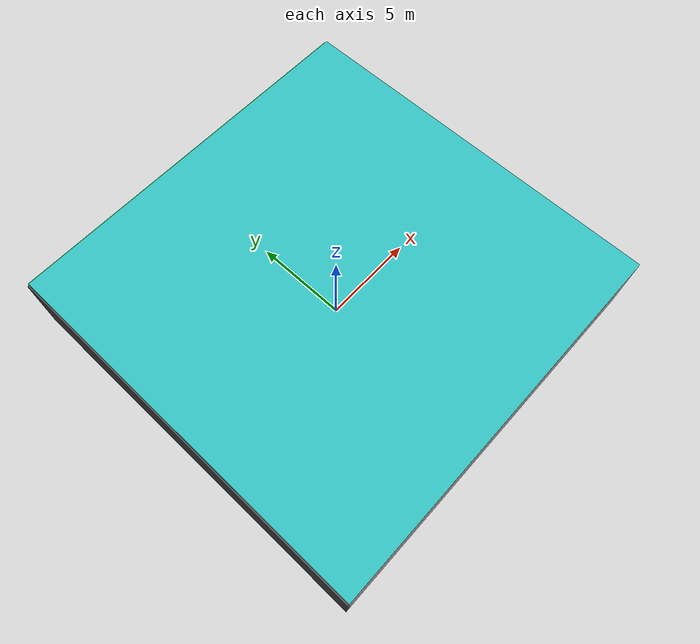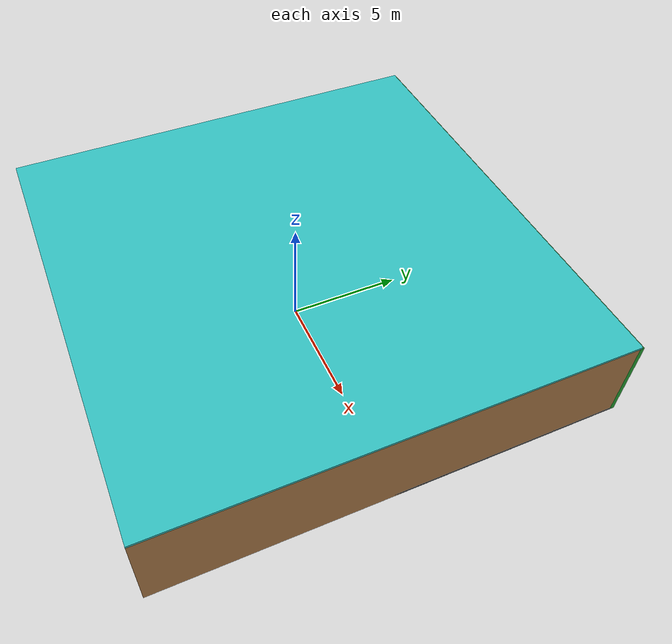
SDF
<sdf version="1.4">
 <world name="default">
  <physics type="ode">
   <max_step_size>0.001</max_step_size>
   <real_time_factor>1</real_time_factor>
   <real_time_update_rate>1000</real_time_update_rate>
   <gravity>0 0 -9.8</gravity>
  </physics>
  <scene><ambient>0.4 0.4 0.4 1</ambient><background>0.7 0.7 0.7 1</background><shadows>1</shadows></scene>
  <model name="Surrounding">
   <static>1</static>
   <link name="Ceiling">
    <collision name="Ceiling_Collision"><geometry><box><size>20 20 0.1</size></box></geometry></collision>
    <visual name="Ceiling_Visual">
     <geometry><box><size>20 20 0.1</size></box></geometry>
     <material>
      <script><uri>file://media/materials/scripts/gazebo.material</uri><name>Gazebo/TurquoiseGlow</name></script>
     </material>
    </visual>
    <pose>0 0 4.05 0 0 0</pose>
   </link>
   <link name="Wall_South">
    <collision name="Wall_South_Collision">
     <geometry><box><size>20 0 4</size></box></geometry>
     <pose>0 0 2 0 -0 0</pose>
    </collision>
    <visual name="Wall_South_Visual">
     <pose>0 0 2 0 -0 0</pose>
     <geometry><box><size>20 0 4</size></box></geometry>
     <material>
      <script><uri>file://media/materials/scripts/gazebo.material</uri><name>Gazebo/Grey</name></script>
     </material>
    </visual>
    <velocity_decay><linear>0</linear><angular>0</angular></velocity_decay>
    <pose>0 -10 0 0 -0 0</pose>
   </link>
   <link name="Wall_East">
    <collision name="Wall_21_Collision">
     <geometry><box><size>20 0 4</size></box></geometry>
     <pose>0 0 2 0 -0 0</pose>
    </collision>
    <visual name="Wall_21_Visual">
     <pose>0 0 2 0 -0 0</pose>
     <geometry><box><size>20 0 4</size></box></geometry>
     <material>
      <script><uri>file://media/materials/scripts/gazebo.material</uri><name>Gazebo/WoodFloor</name></script>
     </material>
    </visual>
    <velocity_decay><linear>0</linear><angular>0</angular></velocity_decay>
    <pose>10 0 0 0 -0 1.5708</pose>
   </link>
   <link name="Wall_North">
    <collision name="Wall_22_Collision">
     <geometry><box><size>20 0.2 4</size></box></geometry>
     <pose>0 0 2 0 -0 0</pose>
    </collision>
    <visual name="Wall_22_Visual">
     <pose>0 0 2 0 -0 0</pose>
     <geometry><box><size>20 0.2 4</size></box></geometry>
     <material>
      <script><uri>file://media/materials/scripts/gazebo.material</uri><name>Gazebo/GreenGlow</name></script>
     </material>
    </visual>
    <velocity_decay><linear>0</linear><angular>0</angular></velocity_decay>
    <pose>0 10 0 0 -0 0</pose>
   </link>
   <link name="Wall_West">
    <collision name="Wall_23_Collision">
     <geometry><box><size>20 0.2 4</size></box></geometry>
     <pose>0 0 2 0 -0 0</pose>
    </collision>
    <visual name="Wall_23_Visual">
     <pose>0 0 2 0 -0 0</pose>
     <geometry><box><size>20 0.2 4</size></box></geometry>
     <material>
      <script><uri>file://media/materials/scripts/gazebo.material</uri><name>Gazebo/DarkGrey</name></script>
     </material>
    </visual>
    <velocity_decay><linear>0</linear><angular>0</angular></velocity_decay>
    <pose>-10 0 0 0 0 -1.5708</pose>
   </link>
   <link name="Ground_link">
    <collision name="collision">
     <pose>0 0 .05 0 -0 0</pose>
     <geometry><box><size>20 20 0.1</size></box></geometry>
    </collision>
    <visual name="visual">
     <pose>0 0 .05 0 -0 0</pose>
     <geometry><box><size>20 20 0.1</size></box></geometry>
     <material>
      <script><uri>file://media/materials/scripts/gazebo.material</uri><name>Gazebo/FlatBlack</name></script>
     </material>
    </visual>
   </link>
   <static>1</static>
  </model>
  <spherical_coordinates>
   <surface_model>EARTH_WGS84</surface_model>
   <latitude_deg>0</latitude_deg>
   <longitude_deg>0</longitude_deg>
   <elevation>0</elevation>
   <heading_deg>0</heading_deg>
  </spherical_coordinates>
  <light name="lightball_0" type="diffuse">
   <diffuse>0.8 0.8 0.8 1</diffuse>
   <specular>0.2 0.2 0.2 1</specular>
   <attenuation>
    <range>100</range>
    <constant>0.7</constant>
    <linear>0.01</linear>
    <quadratic>0.001</quadratic>
   </attenuation>
   <direction>-0.5 0.1 -0.9</direction>
   <pose>8.39564000576 9.30975251363 3.82483983918 0 0 0</pose>
  </light>
  <light name="lightball_1" type="diffuse">
   <diffuse>0.8 0.8 0.8 1</diffuse>
   <specular>0.2 0.2 0.2 1</specular>
   <attenuation>
    <range>100</range>
    <constant>0.7</constant>
    <linear>0.01</linear>
    <quadratic>0.001</quadratic>
   </attenuation>
   <direction>-0.5 0.1 -0.9</direction>
   <pose>2.13493207704 4.58128157928 2.23155636588 0 0 0</pose>
  </light>
  <light name="lightball_2" type="diffuse">
   <diffuse>0.8 0.8 0.8 1</diffuse>
   <specular>0.2 0.2 0.2 1</specular>
   <attenuation>
    <range>100</range>
    <constant>0.7</constant>
    <linear>0.01</linear>
    <quadratic>0.001</quadratic>
   </attenuation>
   <direction>-0.5 0.1 -0.9</direction>
   <pose>-0.585938736691 6.30191092669 1.98752907049 0 0 0</pose>
  </light>
  <light name="lightball_3" type="diffuse">
   <diffuse>0.8 0.8 0.8 1</diffuse>
   <specular>0.2 0.2 0.2 1</specular>
   <attenuation>
    <range>100</range>
    <constant>0.7</constant>
    <linear>0.01</linear>
    <quadratic>0.001</quadratic>
   </attenuation>
   <direction>-0.5 0.1 -0.9</direction>
   <pose>-2.53597144283 -0.554026327508 2.37398274137 0 0 0</pose>
  </light>
  <light name="lightball_4" type="diffuse">
   <diffuse>0.8 0.8 0.8 1</diffuse>
   <specular>0.2 0.2 0.2 1</specular>
   <attenuation>
    <range>100</range>
    <constant>0.7</constant>
    <linear>0.01</linear>
    <quadratic>0.001</quadratic>
   </attenuation>
   <direction>-0.5 0.1 -0.9</direction>
   <pose>2.34557852316 4.21756628139 2.65505971284 0 0 0</pose>
  </light>
  <light name="lightball_5" type="diffuse">
   <diffuse>0.8 0.8 0.8 1</diffuse>
   <specular>0.2 0.2 0.2 1</specular>
   <attenuation>
    <range>100</range>
    <constant>0.7</constant>
    <linear>0.01</linear>
    <quadratic>0.001</quadratic>
   </attenuation>
   <direction>-0.5 0.1 -0.9</direction>
   <pose>-1.73898973151 7.19155743247 1.57331483149 0 0 0</pose>
  </light>
  <light name="lightball_6" type="diffuse">
   <diffuse>0.8 0.8 0.8 1</diffuse>
   <specular>0.2 0.2 0.2 1</specular>
   <attenuation>
    <range>100</range>
    <constant>0.7</constant>
    <linear>0.01</linear>
    <quadratic>0.001</quadratic>
   </attenuation>
   <direction>-0.5 0.1 -0.9</direction>
   <pose>8.4058013291 -8.82444841538 2.69207679013 0 0 0</pose>
  </light>
  <light name="lightball_7" type="diffuse">
   <diffuse>0.8 0.8 0.8 1</diffuse>
   <specular>0.2 0.2 0.2 1</specular>
   <attenuation>
    <range>100</range>
    <constant>0.7</constant>
    <linear>0.01</linear>
    <quadratic>0.001</quadratic>
   </attenuation>
   <direction>-0.5 0.1 -0.9</direction>
   <pose>-1.93046322873 2.79183015676 3.7577664763 0 0 0</pose>
  </light>
  <light name="lightball_8" type="diffuse">
   <diffuse>0.8 0.8 0.8 1</diffuse>
   <specular>0.2 0.2 0.2 1</specular>
   <attenuation>
    <range>100</range>
    <constant>0.7</constant>
    <linear>0.01</linear>
    <quadratic>0.001</quadratic>
   </attenuation>
   <direction>-0.5 0.1 -0.9</direction>
   <pose>-9.22818476356 -1.91959774137 1.92718654563 0 0 0</pose>
  </light>
  <light name="lightball_9" type="diffuse">
   <diffuse>0.8 0.8 0.8 1</diffuse>
   <specular>0.2 0.2 0.2 1</specular>
   <attenuation>
    <range>100</range>
    <constant>0.7</constant>
    <linear>0.01</linear>
    <quadratic>0.001</quadratic>
   </attenuation>
   <direction>-0.5 0.1 -0.9</direction>
   <pose>4.01719478749 4.95000393328 2.79129322856 0 0 0</pose>
  </light>
  <light name="lightball_10" type="diffuse">
   <diffuse>0.8 0.8 0.8 1</diffuse>
   <specular>0.2 0.2 0.2 1</specular>
   <attenuation>
    <range>100</range>
    <constant>0.7</constant>
    <linear>0.01</linear>
    <quadratic>0.001</quadratic>
   </attenuation>
   <direction>-0.5 0.1 -0.9</direction>
   <pose>-5.05504973219 -2.17945814547 0.831530198334 0 0 0</pose>
  </light>
  <include>
   <uri>model://robocup_3Dsim_goal</uri>
   <pose>-8.28355084948 -4.16481767962 0 0 0 0.839781418599</pose>
  </include>
  <include><uri>model://cabinet</uri><pose>-4.15815928187 -7.71616107445 0 0 0 2.997239986</pose></include>
  <include>
   <uri>model://robocup_3Dsim_goal</uri>
   <pose>-4.10411441979 2.27219421113 0 0 0 1.36510568998</pose>
  </include>
  <include><uri>model://cabinet</uri><pose>7.72951082631 1.89156778753 0 0 0 2.70731916808</pose></include>
 </world>
</sdf>

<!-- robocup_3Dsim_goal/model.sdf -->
<sdf version="1.5">
  <model name="robocup_3d_goal">
    <static>true</static>
    <link name="left_post">
      <pose>0 1.05 0.45 0 0 0</pose>
      <collision name="collision">
        <geometry>
          <cylinder>
            <radius>0.05</radius>
            <length>0.9</length>
          </cylinder>
        </geometry>
      </collision>
      <visual name="visual">
        <geometry>
          <cylinder>
            <radius>0.05</radius>
            <length>0.9</length>
          </cylinder>
        </geometry>
        <material>
          <script>
            <uri>file://media/materials/scripts/gazebo.material</uri>
            <name>Gazebo/ZincYellow</name>
          </script>
        </material>
      </visual>
    </link>
    <link name="left_support_horiz_lower">
      <pose>0.30 1.05 0.01 0 0 0</pose>
      <collision name="collision">
        <geometry>
          <box>
            <size>0.50 0.02 0.02</size>
          </box>
        </geometry>
      </collision>
      <visual name="visual">
        <geometry>
          <box>
            <size>0.50 0.02 0.02</size>
          </box>
        </geometry>
        <material>
          <script>
            <uri>file://media/materials/scripts/gazebo.material</uri>
            <name>Gazebo/White</name>
          </script>
        </material>
      </visual>
    </link>
    <link name="left_support_horiz_upper">
      <pose>0.30 1.05 0.79 0 0 0</pose>
      <collision name="collision">
        <geometry>
          <box>
            <size>0.50 0.02 0.02</size>
          </box>
        </geometry>
      </collision>
      <visual name="visual">
        <geometry>
          <box>
            <size>0.50 0.02 0.02</size>
          </box>
        </geometry>
        <material>
          <script>
            <uri>file://media/materials/scripts/gazebo.material</uri>
            <name>Gazebo/White</name>
          </script>
        </material>
      </visual>
    </link>
    <link name="left_support_vertical">
      <pose>0.56 1.05 0.4 0 1.5708 0</pose>
      <collision name="collision">
        <geometry>
          <box>
            <size>0.80 0.02 0.02</size>
          </box>
        </geometry>
      </collision>
      <visual name="visual">
        <geometry>
          <box>
            <size>0.80 0.02 0.02</size>
          </box>
        </geometry>
        <material>
          <script>
            <uri>file://media/materials/scripts/gazebo.material</uri>
            <name>Gazebo/White</name>
          </script>
        </material>
      </visual>
    </link>
    <link name="right_support_horiz_lower">
      <pose>0.30 -1.05 0.01 0 0 0</pose>
      <collision name="collision">
        <geometry>
          <box>
            <size>0.50 0.02 0.02</size>
          </box>
        </geometry>
      </collision>
      <visual name="visual">
        <geometry>
          <box>
            <size>0.50 0.02 0.02</size>
          </box>
        </geometry>
        <material>
          <script>
            <uri>file://media/materials/scripts/gazebo.material</uri>
            <name>Gazebo/White</name>
          </script>
        </material>
      </visual>
    </link>
    <link name="right_support_horiz_upper">
      <pose>0.30 -1.05 0.79 0 0 0</pose>
      <collision name="collision">
        <geometry>
          <box>
            <size>0.50 0.02 0.02</size>
          </box>
        </geometry>
      </collision>
      <visual name="visual">
        <geometry>
          <box>
            <size>0.50 0.02 0.02</size>
          </box>
        </geometry>
        <material>
          <script>
            <uri>file://media/materials/scripts/gazebo.material</uri>
            <name>Gazebo/White</name>
          </script>
        </material>
      </visual>
    </link>
    <link name="right_support_vertical">
      <pose>0.56 -1.05 0.4 0 1.5708 0</pose>
      <collision name="collision">
        <geometry>
          <box>
            <size>0.80 0.02 0.02</size>
          </box>
        </geometry>
      </collision>
      <visual name="visual">
        <geometry>
          <box>
            <size>0.80 0.02 0.02</size>
          </box>
        </geometry>
        <material>
          <script>
            <uri>file://media/materials/scripts/gazebo.material</uri>
            <name>Gazebo/White</name>
          </script>
        </material>
      </visual>
    </link>
    <link name="center_support_horiz_lower">
      <pose>0.56 0 0.01 0 1.5708 0</pose>
      <collision name="collision">
        <geometry>
          <box>
            <size>0.02 2.08 0.02</size>
          </box>
        </geometry>
      </collision>
      <visual name="visual">
        <geometry>
          <box>
            <size>0.02 2.08 0.02</size>
          </box>
        </geometry>
        <material>
          <script>
            <uri>file://media/materials/scripts/gazebo.material</uri>
            <name>Gazebo/White</name>
          </script>
        </material>
      </visual>
    </link>
    <link name="center_support_horiz_upper">
      <pose>0.56 0 0.79 0 1.5708 0</pose>
      <collision name="collision">
        <geometry>
          <box>
            <size>0.02 2.08 0.02</size>
          </box>
        </geometry>
      </collision>
      <visual name="visual">
        <geometry>
          <box>
            <size>0.02 2.08 0.02</size>
          </box>
        </geometry>
        <material>
          <script>
            <uri>file://media/materials/scripts/gazebo.material</uri>
            <name>Gazebo/White</name>
          </script>
        </material>
      </visual>
    </link>
    <link name="right_post">
      <pose>0 -1.05 0.45 0 0 0</pose>
      <collision name="collision">
        <geometry>
          <cylinder>
            <radius>0.05</radius>
            <length>0.9</length>
          </cylinder>
        </geometry>
      </collision>
      <visual name="visual">
        <geometry>
          <cylinder>
            <radius>0.05</radius>
            <length>0.9</length>
          </cylinder>
        </geometry>
        <material>
          <script>
            <uri>file://media/materials/scripts/gazebo.material</uri>
            <name>Gazebo/ZincYellow</name>
          </script>
        </material>
      </visual>
    </link>
    <link name="crossbar">
      <pose>0 0 0.85 1.57 1.57 0</pose>
      <collision name="collision">
        <geometry>
          <cylinder>
            <radius>0.05</radius>
            <length>2.0</length>
          </cylinder>
        </geometry>
      </collision>
      <visual name="visual">
        <geometry>
          <cylinder>
            <radius>0.05</radius>
            <length>2.0</length>
          </cylinder>
        </geometry>
        <material>
          <script>
            <uri>file://media/materials/scripts/gazebo.material</uri>
            <name>Gazebo/ZincYellow</name>
          </script>
        </material>
      </visual>
    </link>
    <link name="center_net">
      <pose>0.56 0 0.40 0 0 0</pose>
      <collision name="collision">
        <geometry>
          <box>
            <size>0.01 2.1 0.80</size>
          </box>
        </geometry>
      </collision>
      <visual name="visual">
        <geometry>
          <box>
            <size>0.01 2.1 0.80</size>
          </box>
        </geometry>
        <material>
          <script>
            <uri>model://../model_source/models/robocup09_spl_field/materials/scripts/</uri>
            <uri>model://../model_source/models/robocup09_spl_field/materials/textures/</uri>
            <name>RoboCup/Net</name>
          </script>
        </material>
      </visual>
    </link>
    <link name="left_net">
      <pose>0.30 1.05 0.40 0 0 0</pose>
      <collision name="collision">
        <geometry>
          <box>
            <size>0.50 0.01 0.76</size>
          </box>
        </geometry>
      </collision>
      <visual name="visual">
        <geometry>
          <box>
            <size>0.50 0.01 0.76</size>
          </box>
        </geometry>
        <material>
          <script>
            <uri>model://../model_source/models/robocup09_spl_field/materials/scripts/</uri>
            <uri>model://../model_source/models/robocup09_spl_field/materials/textures/</uri>
            <name>RoboCup/Net</name>
          </script>
        </material>
      </visual>
    </link>
    <link name="right_net">
      <pose>0.30 -1.05 0.40 0 0 0</pose>
      <collision name="collision">
        <geometry>
          <box>
            <size>0.50 0.01 0.76</size>
          </box>
        </geometry>
      </collision>
      <visual name="visual">
        <geometry>
          <box>
            <size>0.50 0.01 0.76</size>
          </box>
        </geometry>
        <material>
          <script>
            <uri>model://../model_source/models/robocup09_spl_field/materials/scripts/</uri>
            <uri>model://../model_source/models/robocup09_spl_field/materials/textures/</uri>
            <name>RoboCup/Net</name>
          </script>
        </material>
      </visual>
    </link>
  </model>
</sdf>

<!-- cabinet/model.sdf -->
<sdf version="1.5">
  <model name="cabinet">
    <static>true</static>
    <link name="cabinet_bottom_plate">
      <inertial>
        <pose>0 0 -1 0 0 0</pose>
        <inertia>
          <ixx>2.050000</ixx>
          <ixy>0</ixy>
          <ixz>0</ixz>
          <iyy>2.050000</iyy>
          <iyz>0</iyz>
          <izz>2.050000</izz>
        </inertia>
        <mass>25.000000</mass>
      </inertial>
      <collision name="cabinet_bottom_plate_geom">
        <pose>0 0 0.010000 0 0 0</pose>
        <geometry>
          <box>
            <size>0.450000 0.450000 0.020000</size>
          </box>
        </geometry>
      </collision>
      <visual name="cabinet_bottom_plate_geom_visual">
        <pose>0 0 0.010000 0 0 0</pose>
        <geometry>
          <box>
            <size>0.450000 0.450000 0.020000</size>
          </box>
        </geometry>
        <material>
          <script>
            <uri>model://media/materials/scripts/gazebo.material</uri>
            <name>Gazebo/Wood</name>
          </script>
        </material>
      </visual>
      <collision name="cabinet_bottom_plate_geom_cabinet_back_plate">
        <pose>0.235000 0 0.510000 0 0 0</pose>
        <geometry>
          <box>
            <size>0.020000 0.450000 1.020000</size>
          </box>
        </geometry>
      </collision>
      <visual name="cabinet_bottom_plate_geom_cabinet_back_plate_visual">
        <pose>0.235000 0 0.510000 0 0 0</pose>
        <geometry>
          <box>
            <size>0.020000 0.450000 1.020000</size>
          </box>
        </geometry>
        <material>
          <script>
            <uri>model://media/materials/scripts/gazebo.material</uri>
            <name>Gazebo/Wood</name>
          </script>
        </material>
      </visual>
      <collision name="cabinet_bottom_plate_geom_cabinet_left_plate">
        <pose>0 0.235000 0.510000 0 0 0</pose>
        <geometry>
          <box>
            <size>0.450000 0.020000 1.020000</size>
          </box>
        </geometry>
      </collision>
      <visual name="cabinet_bottom_plate_geom_cabinet_left_plate_visual">
        <pose>0 0.235000 0.510000 0 0 0</pose>
        <geometry>
          <box>
            <size>0.450000 0.020000 1.020000</size>
          </box>
        </geometry>
        <material>
          <script>
            <uri>model://media/materials/scripts/gazebo.material</uri>
            <name>Gazebo/Wood</name>
          </script>
        </material>
      </visual>
      <collision name="cabinet_bottom_plate_geom_cabinet_middle_plate">
        <pose>0 0 0.510000 0 0 0</pose>
        <geometry>
          <box>
            <size>0.450000 0.450000 0.020000</size>
          </box>
        </geometry>
      </collision>
      <visual name="cabinet_bottom_plate_geom_cabinet_middle_plate_visual">
        <pose>0 0 0.510000 0 0 0</pose>
        <geometry>
          <box>
            <size>0.450000 0.450000 0.020000</size>
          </box>
        </geometry>
        <material>
          <script>
            <uri>model://media/materials/scripts/gazebo.material</uri>
            <name>Gazebo/Wood</name>
          </script>
        </material>
      </visual>
      <collision name="cabinet_bottom_plate_geom_cabinet_right_plate">
        <pose>0 -0.235000 0.510000 0 0 0</pose>
        <geometry>
          <box>
            <size>0.450000 0.020000 1.020000</size>
          </box>
        </geometry>
      </collision>
      <visual name="cabinet_bottom_plate_geom_cabinet_right_plate_visual">
        <pose>0 -0.235000 0.510000 0 0 0</pose>
        <geometry>
          <box>
            <size>0.450000 0.020000 1.020000</size>
          </box>
        </geometry>
        <material>
          <script>
            <uri>model://media/materials/scripts/gazebo.material</uri>
            <name>Gazebo/Wood</name>
          </script>
        </material>
      </visual>
      <collision name="cabinet_bottom_plate_geom_cabinet_top_plate">
        <pose>0 0 1.010000 0 0 0</pose>
        <geometry>
          <box>
            <size>0.450000 0.450000 0.020000</size>
          </box>
        </geometry>
      </collision>
      <visual name="cabinet_bottom_plate_geom_cabinet_top_plate_visual">
        <pose>0 0 1.010000 0 0 0</pose>
        <geometry>
          <box>
            <size>0.450000 0.450000 0.020000</size>
          </box>
        </geometry>
        <material>
          <script>
            <uri>model://media/materials/scripts/gazebo.material</uri>
            <name>Gazebo/Wood</name>
          </script>
        </material>
      </visual>
    </link>
  </model>
</sdf>
